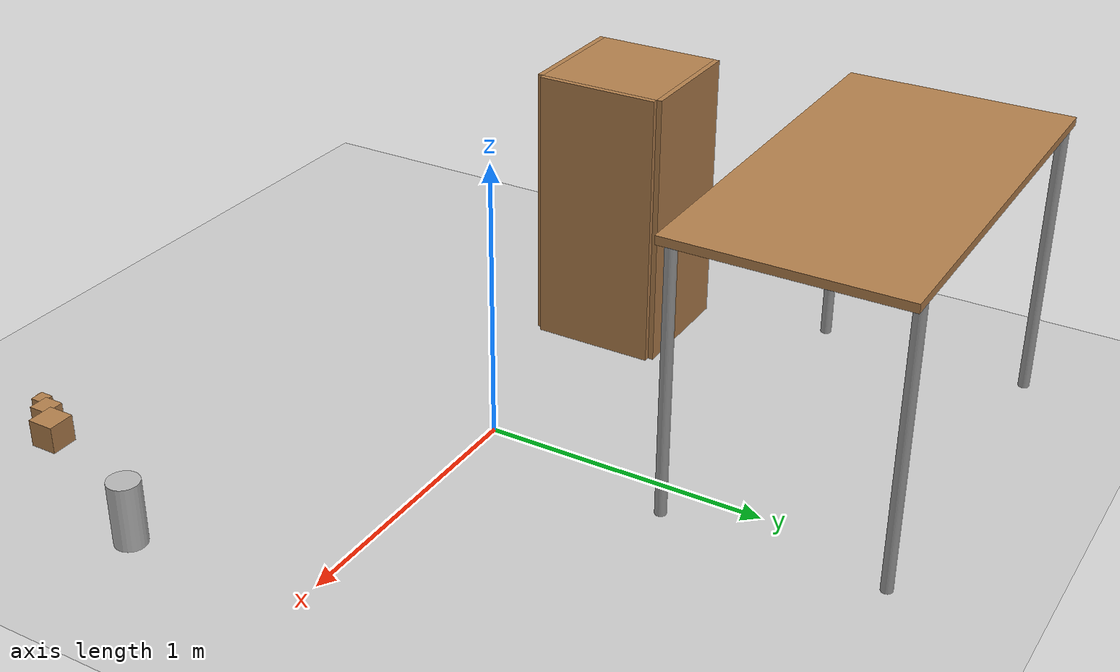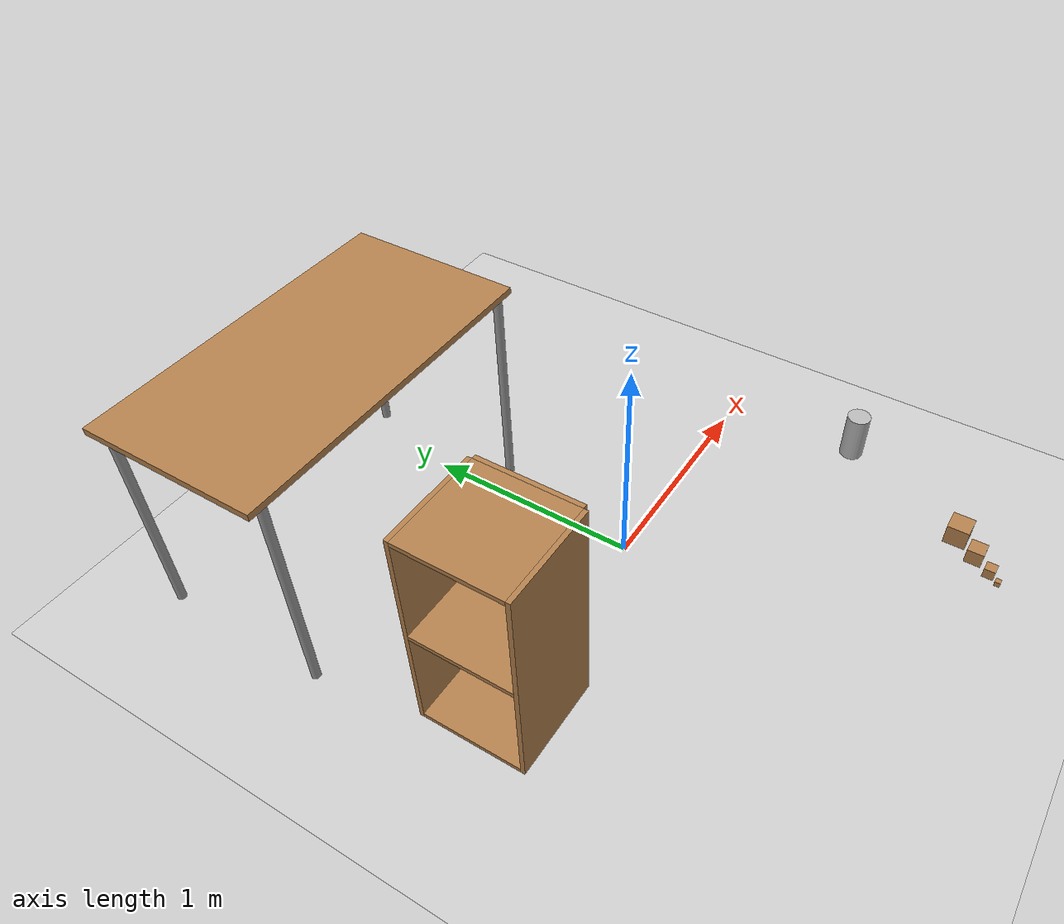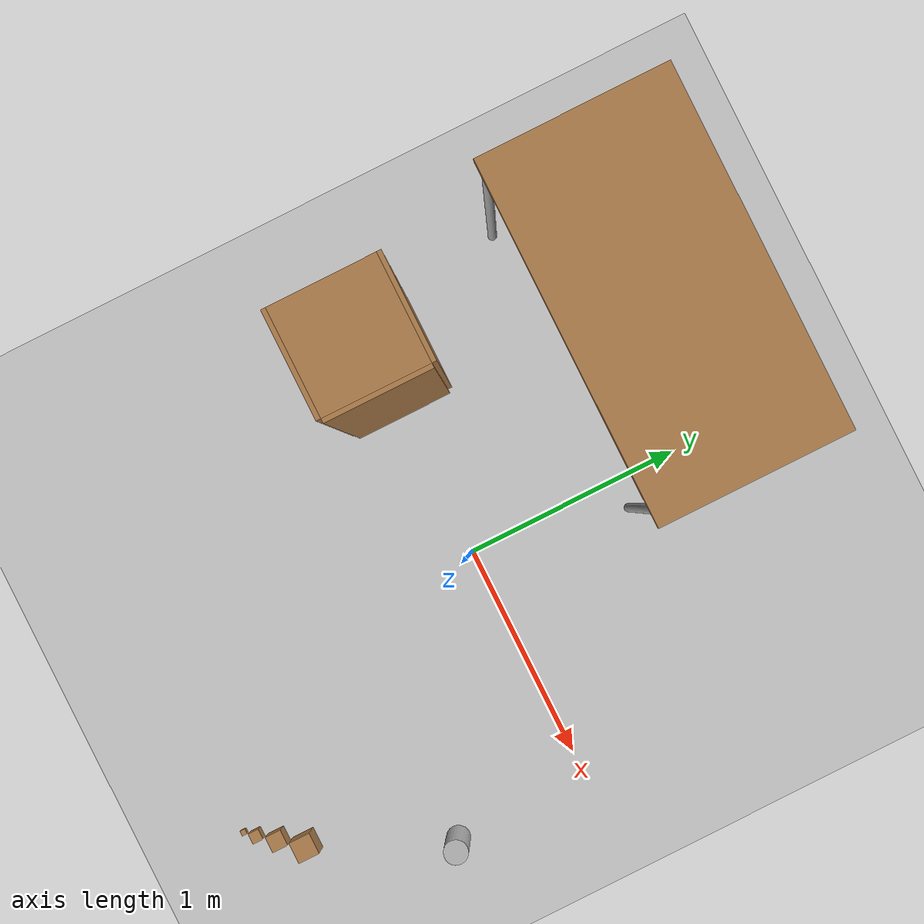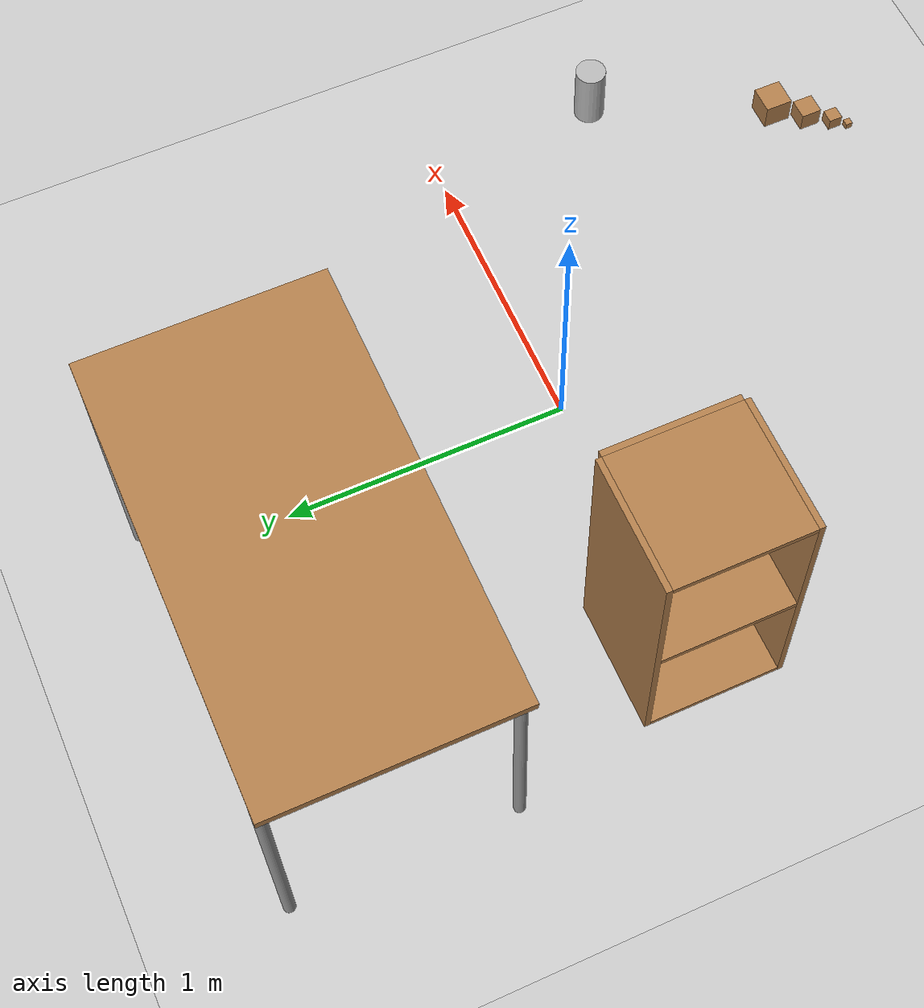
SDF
<sdf version="1.7">
 <world name="default">
  <light name="sun" type="directional">
   <pose>0 0 10 0 -0 0</pose>
   <diffuse>0.8 0.8 0.8 1</diffuse>
   <specular>0.2 0.2 0.2 1</specular>
   <attenuation>
    <range>1000</range>
    <constant>0.9</constant>
    <linear>0.01</linear>
    <quadratic>0.001</quadratic>
   </attenuation>
   <direction>-0.5 0.1 -0.9</direction>
   <spot><inner_angle>0</inner_angle><outer_angle>0</outer_angle><falloff>0</falloff></spot>
  </light>
  <model name="ground_plane">
   <static>1</static>
   <link name="link">
    <collision name="collision">
     <geometry><plane><normal>0 0 1</normal><size>100 100</size></plane></geometry>
     <surface>
      <contact><collide_bitmask>65535</collide_bitmask></contact>
      <friction><ode><mu>100</mu><mu2>50</mu2></ode></friction>
     </surface>
    </collision>
    <visual name="visual">
     <cast_shadows>0</cast_shadows>
     <geometry><plane><normal>0 0 1</normal><size>100 100</size></plane></geometry>
     <material>
      <script><uri>file://media/materials/scripts/gazebo.material</uri><name>Gazebo/Grey</name></script>
     </material>
    </visual>
   </link>
  </model>
  <gravity>0 0 -9.8</gravity>
  <magnetic_field>6e-06 2.3e-05 -4.2e-05</magnetic_field>
  <atmosphere type="adiabatic"/>
  <physics type="ode">
   <max_step_size>0.001</max_step_size>
   <real_time_factor>1</real_time_factor>
   <real_time_update_rate>1000</real_time_update_rate>
  </physics>
  <scene><ambient>0.4 0.4 0.4 1</ambient><background>0.7 0.7 0.7 1</background><shadows>1</shadows></scene>
  <audio><device>default</device></audio>
  <spherical_coordinates>
   <surface_model>EARTH_WGS84</surface_model>
   <latitude_deg>0</latitude_deg>
   <longitude_deg>0</longitude_deg>
   <elevation>0</elevation>
   <heading_deg>0</heading_deg>
  </spherical_coordinates>
  <model name="cabinet">
   <static>1</static>
   <link name="cabinet_bottom_plate">
    <inertial>
     <pose>0 0 -1 0 -0 0</pose>
     <inertia><ixx>2.05</ixx><ixy>0</ixy><ixz>0</ixz><iyy>2.05</iyy><iyz>0</iyz><izz>2.05</izz></inertia>
     <mass>25</mass>
    </inertial>
    <collision name="cabinet_bottom_plate_geom">
     <pose>0 0 0.01 0 -0 0</pose>
     <geometry><box><size>0.45 0.45 0.02</size></box></geometry>
    </collision>
    <visual name="cabinet_bottom_plate_geom_visual">
     <pose>0 0 0.01 0 -0 0</pose>
     <geometry><box><size>0.45 0.45 0.02</size></box></geometry>
     <material>
      <script><uri>file://media/materials/scripts/gazebo.material</uri><name>Gazebo/Wood</name></script>
     </material>
    </visual>
    <collision name="cabinet_bottom_plate_geom_cabinet_back_plate">
     <pose>0.235 0 0.51 0 -0 0</pose>
     <geometry><box><size>0.02 0.45 1.02</size></box></geometry>
    </collision>
    <visual name="cabinet_bottom_plate_geom_cabinet_back_plate_visual">
     <pose>0.235 0 0.51 0 -0 0</pose>
     <geometry><box><size>0.02 0.45 1.02</size></box></geometry>
     <material>
      <script><uri>file://media/materials/scripts/gazebo.material</uri><name>Gazebo/Wood</name></script>
     </material>
    </visual>
    <collision name="cabinet_bottom_plate_geom_cabinet_left_plate">
     <pose>0 0.235 0.51 0 -0 0</pose>
     <geometry><box><size>0.45 0.02 1.02</size></box></geometry>
    </collision>
    <visual name="cabinet_bottom_plate_geom_cabinet_left_plate_visual">
     <pose>0 0.235 0.51 0 -0 0</pose>
     <geometry><box><size>0.45 0.02 1.02</size></box></geometry>
     <material>
      <script><uri>file://media/materials/scripts/gazebo.material</uri><name>Gazebo/Wood</name></script>
     </material>
    </visual>
    <collision name="cabinet_bottom_plate_geom_cabinet_middle_plate">
     <pose>0 0 0.51 0 -0 0</pose>
     <geometry><box><size>0.45 0.45 0.02</size></box></geometry>
    </collision>
    <visual name="cabinet_bottom_plate_geom_cabinet_middle_plate_visual">
     <pose>0 0 0.51 0 -0 0</pose>
     <geometry><box><size>0.45 0.45 0.02</size></box></geometry>
     <material>
      <script><uri>file://media/materials/scripts/gazebo.material</uri><name>Gazebo/Wood</name></script>
     </material>
    </visual>
    <collision name="cabinet_bottom_plate_geom_cabinet_right_plate">
     <pose>0 -0.235 0.51 0 -0 0</pose>
     <geometry><box><size>0.45 0.02 1.02</size></box></geometry>
    </collision>
    <visual name="cabinet_bottom_plate_geom_cabinet_right_plate_visual">
     <pose>0 -0.235 0.51 0 -0 0</pose>
     <geometry><box><size>0.45 0.02 1.02</size></box></geometry>
     <material>
      <script><uri>file://media/materials/scripts/gazebo.material</uri><name>Gazebo/Wood</name></script>
     </material>
    </visual>
    <collision name="cabinet_bottom_plate_geom_cabinet_top_plate">
     <pose>0 0 1.01 0 -0 0</pose>
     <geometry><box><size>0.45 0.45 0.02</size></box></geometry>
    </collision>
    <visual name="cabinet_bottom_plate_geom_cabinet_top_plate_visual">
     <pose>0 0 1.01 0 -0 0</pose>
     <geometry><box><size>0.45 0.45 0.02</size></box></geometry>
     <material>
      <script><uri>file://media/materials/scripts/gazebo.material</uri><name>Gazebo/Wood</name></script>
     </material>
    </visual>
   </link>
   <pose>-0.922097 0.002981 0 0 -0 0</pose>
  </model>
  <model name="table">
   <static>1</static>
   <link name="link">
    <collision name="surface">
     <pose>0 0 1 0 -0 0</pose>
     <geometry><box><size>1.5 0.8 0.03</size></box></geometry>
     <surface><friction><ode><mu>0.6</mu><mu2>0.6</mu2></ode></friction></surface>
    </collision>
    <visual name="visual1">
     <pose>0 0 1 0 -0 0</pose>
     <geometry><box><size>1.5 0.8 0.03</size></box></geometry>
     <material>
      <script><uri>file://media/materials/scripts/gazebo.material</uri><name>Gazebo/Wood</name></script>
     </material>
    </visual>
    <collision name="front_left_leg">
     <pose>0.68 0.38 0.5 0 -0 0</pose>
     <geometry><cylinder><radius>0.02</radius><length>1</length></cylinder></geometry>
    </collision>
    <visual name="front_left_leg">
     <pose>0.68 0.38 0.5 0 -0 0</pose>
     <geometry><cylinder><radius>0.02</radius><length>1</length></cylinder></geometry>
     <material>
      <script><uri>file://media/materials/scripts/gazebo.material</uri><name>Gazebo/Grey</name></script>
     </material>
    </visual>
    <collision name="front_right_leg">
     <pose>0.68 -0.38 0.5 0 -0 0</pose>
     <geometry><cylinder><radius>0.02</radius><length>1</length></cylinder></geometry>
    </collision>
    <visual name="front_right_leg">
     <pose>0.68 -0.38 0.5 0 -0 0</pose>
     <geometry><cylinder><radius>0.02</radius><length>1</length></cylinder></geometry>
     <material>
      <script><uri>file://media/materials/scripts/gazebo.material</uri><name>Gazebo/Grey</name></script>
     </material>
    </visual>
    <collision name="back_right_leg">
     <pose>-0.68 -0.38 0.5 0 -0 0</pose>
     <geometry><cylinder><radius>0.02</radius><length>1</length></cylinder></geometry>
    </collision>
    <visual name="back_right_leg">
     <pose>-0.68 -0.38 0.5 0 -0 0</pose>
     <geometry><cylinder><radius>0.02</radius><length>1</length></cylinder></geometry>
     <material>
      <script><uri>file://media/materials/scripts/gazebo.material</uri><name>Gazebo/Grey</name></script>
     </material>
    </visual>
    <collision name="back_left_leg">
     <pose>-0.68 0.38 0.5 0 -0 0</pose>
     <geometry><cylinder><radius>0.02</radius><length>1</length></cylinder></geometry>
    </collision>
    <visual name="back_left_leg">
     <pose>-0.68 0.38 0.5 0 -0 0</pose>
     <geometry><cylinder><radius>0.02</radius><length>1</length></cylinder></geometry>
     <material>
      <script><uri>file://media/materials/scripts/gazebo.material</uri><name>Gazebo/Grey</name></script>
     </material>
    </visual>
   </link>
   <pose>-0.542101 1.09308 0 0 -0 0</pose>
  </model>
  <model name="beer">
   <link name="link">
    <pose>0 0 0.115 0 -0 0</pose>
    <inertial>
     <mass>0.39</mass>
     <inertia><ixx>0.00058</ixx><ixy>0</ixy><ixz>0</ixz><iyy>0.00058</iyy><iyz>0</iyz><izz>0.00019</izz></inertia>
    </inertial>
    <collision name="collision">
     <geometry><cylinder><radius>0.055</radius><length>0.23</length></cylinder></geometry>
    </collision>
    <visual name="visual">
     <geometry><cylinder><radius>0.055</radius><length>0.23</length></cylinder></geometry>
     <material>
      <script>
       <uri>model://beer/materials/scripts</uri>
       <uri>model://beer/materials/textures</uri>
       <name>Beer/Diffuse</name>
      </script>
     </material>
    </visual>
   </link>
   <pose>1.11757 -0.629316 -7e-06 -1e-06 -0 0.041314</pose>
  </model>
  <model name="wood_cube_10cm">
   <link name="link">
    <pose>0 0 0.05 0 -0 0</pose>
    <inertial>
     <mass>0.5167</mass>
     <inertia>
      <ixx>0.000861167</ixx>
      <ixy>0</ixy>
      <ixz>0</ixz>
      <iyy>0.000861167</iyy>
      <iyz>0</iyz>
      <izz>0.000861167</izz>
     </inertia>
    </inertial>
    <collision name="collision">
     <geometry><box><size>0.1 0.1 0.1</size></box></geometry>
     <surface>
      <contact>
       <poissons_ratio>0.347</poissons_ratio>
       <elastic_modulus>8.8e+09</elastic_modulus>
       <ode><kp>100000</kp><kd>100</kd><max_vel>100</max_vel><min_depth>0.001</min_depth></ode>
      </contact>
      <friction>
       <torsional>
        <coefficient>1</coefficient>
        <use_patch_radius>0</use_patch_radius>
        <surface_radius>0.01</surface_radius>
       </torsional>
      </friction>
     </surface>
    </collision>
    <visual name="visual">
     <geometry><box><size>0.1 0.1 0.1</size></box></geometry>
     <material>
      <script><uri>file://media/materials/scripts/gazebo.material</uri><name>Gazebo/Wood</name></script>
     </material>
    </visual>
   </link>
   <pose>0.83426 -1.24189 -0.001013 0 -0 0</pose>
  </model>
  <model name="wood_cube_7_5cm">
   <link name="link">
    <pose>0 0 0.0375 0 -0 0</pose>
    <inertial>
     <mass>0.2249</mass>
     <inertia>
      <ixx>0.000210844</ixx>
      <ixy>0</ixy>
      <ixz>0</ixz>
      <iyy>0.000210844</iyy>
      <iyz>0</iyz>
      <izz>0.000210844</izz>
     </inertia>
    </inertial>
    <collision name="collision">
     <geometry><box><size>0.075 0.075 0.075</size></box></geometry>
     <surface>
      <contact>
       <poissons_ratio>0.347</poissons_ratio>
       <elastic_modulus>8.8e+09</elastic_modulus>
       <ode><kp>100000</kp><kd>100</kd><max_vel>100</max_vel><min_depth>0.001</min_depth></ode>
      </contact>
      <friction>
       <torsional>
        <coefficient>1</coefficient>
        <use_patch_radius>0</use_patch_radius>
        <surface_radius>0.01</surface_radius>
       </torsional>
      </friction>
     </surface>
    </collision>
    <visual name="visual">
     <geometry><box><size>0.075 0.075 0.075</size></box></geometry>
     <material>
      <script><uri>file://media/materials/scripts/gazebo.material</uri><name>Gazebo/Wood</name></script>
     </material>
    </visual>
   </link>
   <pose>0.756768 -1.34492 -0.001005 0 -0 0</pose>
  </model>
  <model name="wood_cube_5cm">
   <link name="link">
    <pose>0 0 0.025 0 -0 0</pose>
    <inertial>
     <mass>0.0565</mass>
     <inertia>
      <ixx>2.35417e-05</ixx>
      <ixy>0</ixy>
      <ixz>0</ixz>
      <iyy>2.35417e-05</iyy>
      <iyz>0</iyz>
      <izz>2.35417e-05</izz>
     </inertia>
    </inertial>
    <collision name="collision">
     <geometry><box><size>0.05 0.05 0.05</size></box></geometry>
     <surface>
      <contact>
       <poissons_ratio>0.347</poissons_ratio>
       <elastic_modulus>8.8e+09</elastic_modulus>
       <ode><kp>100000</kp><kd>1</kd><max_vel>1</max_vel><min_depth>0.001</min_depth></ode>
      </contact>
      <friction>
       <torsional>
        <coefficient>1</coefficient>
        <use_patch_radius>0</use_patch_radius>
        <surface_radius>0.05</surface_radius>
       </torsional>
      </friction>
     </surface>
    </collision>
    <visual name="visual">
     <geometry><box><size>0.05 0.05 0.05</size></box></geometry>
     <material>
      <script><uri>file://media/materials/scripts/gazebo.material</uri><name>Gazebo/Wood</name></script>
     </material>
    </visual>
   </link>
   <pose>0.700528 -1.42621 -0.001001 0 -0 0</pose>
  </model>
  <model name="wood_cube_2_5cm">
   <link name="link">
    <pose>0 0 0.0125 0 -0 0</pose>
    <inertial>
     <mass>0.0073</mass>
     <inertia>
      <ixx>7.60417e-07</ixx>
      <ixy>0</ixy>
      <ixz>0</ixz>
      <iyy>7.60417e-07</iyy>
      <iyz>0</iyz>
      <izz>7.60417e-07</izz>
     </inertia>
    </inertial>
    <collision name="collision">
     <geometry><box><size>0.025 0.025 0.025</size></box></geometry>
     <surface>
      <contact>
       <poissons_ratio>0.347</poissons_ratio>
       <elastic_modulus>8.8e+09</elastic_modulus>
       <ode><kp>100000</kp><kd>100</kd><max_vel>100</max_vel><min_depth>0.001</min_depth></ode>
      </contact>
      <friction>
       <torsional>
        <coefficient>1</coefficient>
        <use_patch_radius>0</use_patch_radius>
        <surface_radius>0.01</surface_radius>
       </torsional>
      </friction>
     </surface>
    </collision>
    <visual name="visual">
     <geometry><box><size>0.025 0.025 0.025</size></box></geometry>
     <material>
      <script><uri>file://media/materials/scripts/gazebo.material</uri><name>Gazebo/Wood</name></script>
     </material>
    </visual>
   </link>
   <pose>0.664072 -1.47327 -0.000747 9.4e-05 -9.4e-05 0</pose>
  </model>
 </world>
</sdf>
